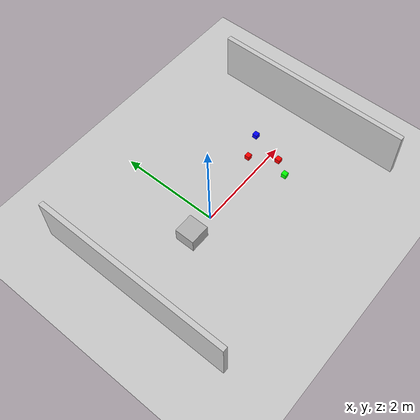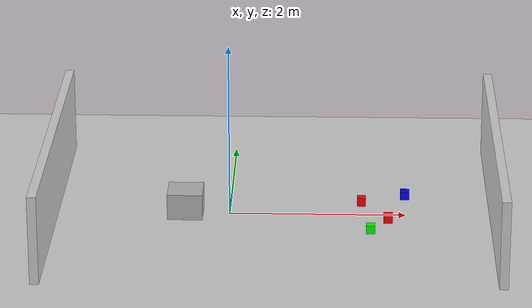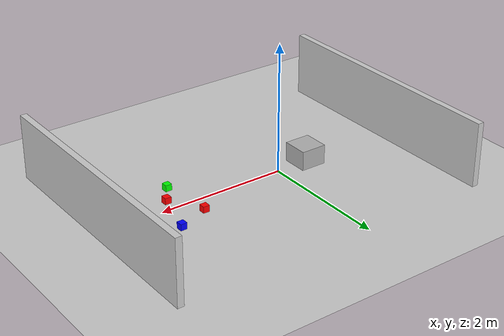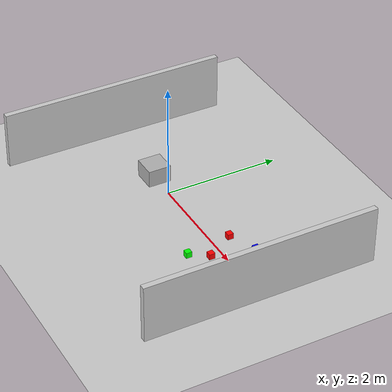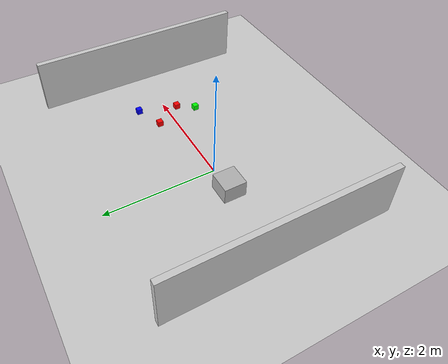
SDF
<?xml version="1.0"?>
<sdf version="1.6">
    <world name="robocollector_world">
        <!-- Physics -->
        <physics name="default_physics" default="0" type="ode">
            <max_step_size>0.001</max_step_size>
            <real_time_factor>1</real_time_factor>
            <real_time_update_rate>1000</real_time_update_rate>
        </physics>

        <!-- Lighting -->
        <include>
            <uri>model://sun</uri>
        </include>

        <!-- Ground plane -->
        <include>
            <uri>model://ground_plane</uri>
        </include>

        <!-- Red Block 1 -->
        <model name="red_block_1">
            <pose>1.5 0.3 0.05 0 0 0</pose>
            <static>false</static>
            <link name="link">
                <collision name="collision">
                    <geometry>
                        <box>
                            <size>0.1 0.1 0.1</size>
                        </box>
                    </geometry>
                </collision>
                <visual name="visual">
                    <geometry>
                        <box>
                            <size>0.1 0.1 0.1</size>
                        </box>
                    </geometry>
                    <material>
                        <ambient>1 0 0 1</ambient>
                        <diffuse>1 0 0 1</diffuse>
                        <specular>0.5 0.5 0.5 1</specular>
                    </material>
                </visual>
                <inertial>
                    <mass>0.1</mass>
                    <inertia>
                        <ixx>0.000166667</ixx>
                        <ixy>0.0</ixy>
                        <ixz>0.0</ixz>
                        <iyy>0.000166667</iyy>
                        <iyz>0.0</iyz>
                        <izz>0.000166667</izz>
                    </inertia>
                </inertial>
            </link>
        </model>

        <!-- Red Block 2 -->
        <model name="red_block_2">
            <pose>1.8 -0.2 0.05 0 0 0</pose>
            <static>false</static>
            <link name="link">
                <collision name="collision">
                    <geometry>
                        <box>
                            <size>0.1 0.1 0.1</size>
                        </box>
                    </geometry>
                </collision>
                <visual name="visual">
                    <geometry>
                        <box>
                            <size>0.1 0.1 0.1</size>
                        </box>
                    </geometry>
                    <material>
                        <ambient>1 0 0 1</ambient>
                        <diffuse>1 0 0 1</diffuse>
                        <specular>0.5 0.5 0.5 1</specular>
                    </material>
                </visual>
                <inertial>
                    <mass>0.1</mass>
                    <inertia>
                        <ixx>0.000166667</ixx>
                        <ixy>0.0</ixy>
                        <ixz>0.0</ixz>
                        <iyy>0.000166667</iyy>
                        <iyz>0.0</iyz>
                        <izz>0.000166667</izz>
                    </inertia>
                </inertial>
            </link>
        </model>

        <!-- Blue Block -->
        <model name="blue_block">
            <pose>2.0 0.5 0.05 0 0 0</pose>
            <static>false</static>
            <link name="link">
                <collision name="collision">
                    <geometry>
                        <box>
                            <size>0.1 0.1 0.1</size>
                        </box>
                    </geometry>
                </collision>
                <visual name="visual">
                    <geometry>
                        <box>
                            <size>0.1 0.1 0.1</size>
                        </box>
                    </geometry>
                    <material>
                        <ambient>0 0 1 1</ambient>
                        <diffuse>0 0 1 1</diffuse>
                        <specular>0.5 0.5 0.5 1</specular>
                    </material>
                </visual>
                <inertial>
                    <mass>0.1</mass>
                    <inertia>
                        <ixx>0.000166667</ixx>
                        <ixy>0.0</ixy>
                        <ixz>0.0</ixz>
                        <iyy>0.000166667</iyy>
                        <iyz>0.0</iyz>
                        <izz>0.000166667</izz>
                    </inertia>
                </inertial>
            </link>
        </model>

        <!-- Green Block -->
        <model name="green_block">
            <pose>1.6 -0.5 0.05 0 0 0</pose>
            <static>false</static>
            <link name="link">
                <collision name="collision">
                    <geometry>
                        <box>
                            <size>0.1 0.1 0.1</size>
                        </box>
                    </geometry>
                </collision>
                <visual name="visual">
                    <geometry>
                        <box>
                            <size>0.1 0.1 0.1</size>
                        </box>
                    </geometry>
                    <material>
                        <ambient>0 1 0 1</ambient>
                        <diffuse>0 1 0 1</diffuse>
                        <specular>0.5 0.5 0.5 1</specular>
                    </material>
                </visual>
                <inertial>
                    <mass>0.1</mass>
                    <inertia>
                        <ixx>0.000166667</ixx>
                        <ixy>0.0</ixy>
                        <ixz>0.0</ixz>
                        <iyy>0.000166667</iyy>
                        <iyz>0.0</iyz>
                        <izz>0.000166667</izz>
                    </inertia>
                </inertial>
            </link>
        </model>

        <!-- Collection Box (larger, at origin) -->
        <model name="collection_box">
            <pose>-0.5 0 0.15 0 0 0</pose>
            <static>true</static>
            <link name="link">
                <collision name="collision">
                    <geometry>
                        <box>
                            <size>0.4 0.4 0.3</size>
                        </box>
                    </geometry>
                </collision>
                <visual name="visual">
                    <geometry>
                        <box>
                            <size>0.4 0.4 0.3</size>
                        </box>
                    </geometry>
                    <material>
                        <ambient>0.5 0.5 0.5 1</ambient>
                        <diffuse>0.7 0.7 0.7 1</diffuse>
                        <specular>0.3 0.3 0.3 1</specular>
                    </material>
                </visual>
            </link>
        </model>

        <!-- Simple walls to bound the area -->
        <model name="wall_1">
            <pose>3 0 0.5 0 0 0</pose>
            <static>true</static>
            <link name="link">
                <collision name="collision">
                    <geometry>
                        <box>
                            <size>0.1 4 1</size>
                        </box>
                    </geometry>
                </collision>
                <visual name="visual">
                    <geometry>
                        <box>
                            <size>0.1 4 1</size>
                        </box>
                    </geometry>
                    <material>
                        <ambient>0.8 0.8 0.8 1</ambient>
                    </material>
                </visual>
            </link>
        </model>

        <model name="wall_2">
            <pose>-2 0 0.5 0 0 0</pose>
            <static>true</static>
            <link name="link">
                <collision name="collision">
                    <geometry>
                        <box>
                            <size>0.1 4 1</size>
                        </box>
                    </geometry>
                </collision>
                <visual name="visual">
                    <geometry>
                        <box>
                            <size>0.1 4 1</size>
                        </box>
                    </geometry>
                    <material>
                        <ambient>0.8 0.8 0.8 1</ambient>
                    </material>
                </visual>
            </link>
        </model>

    </world>
</sdf>
